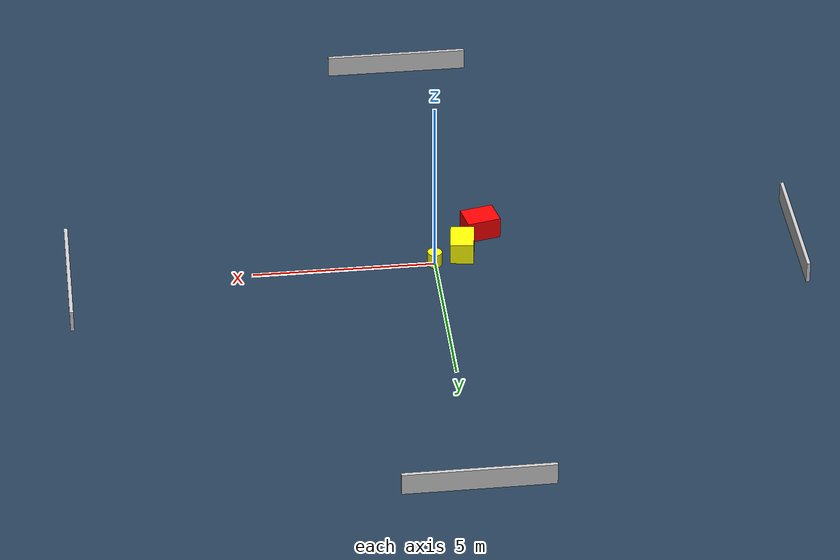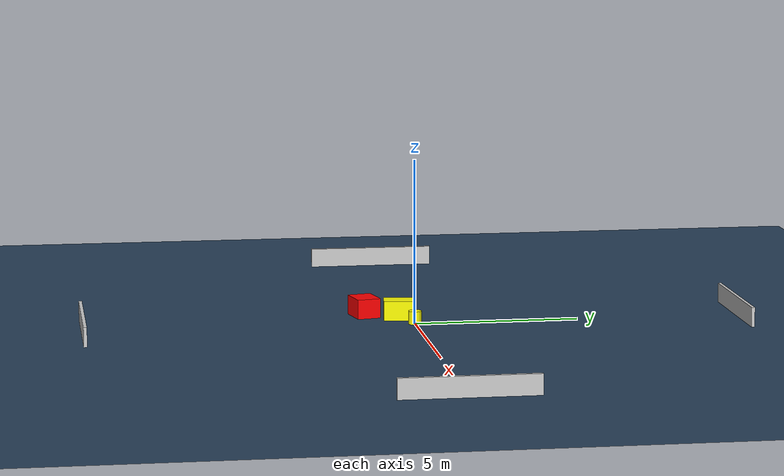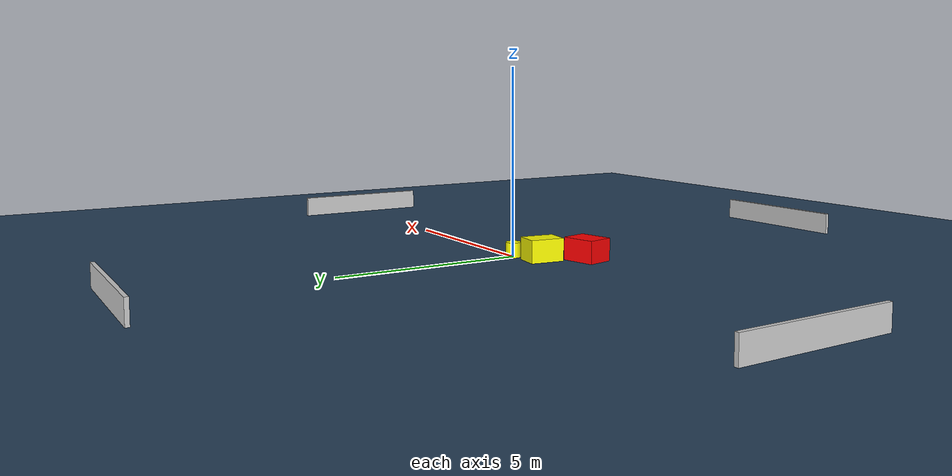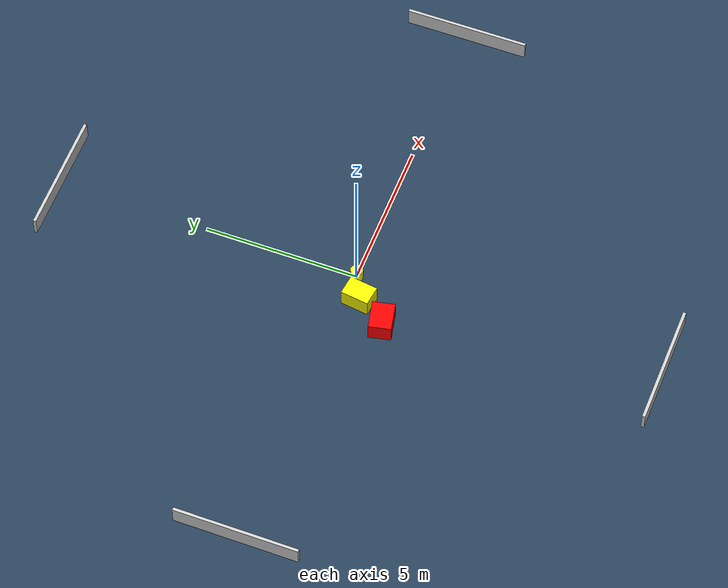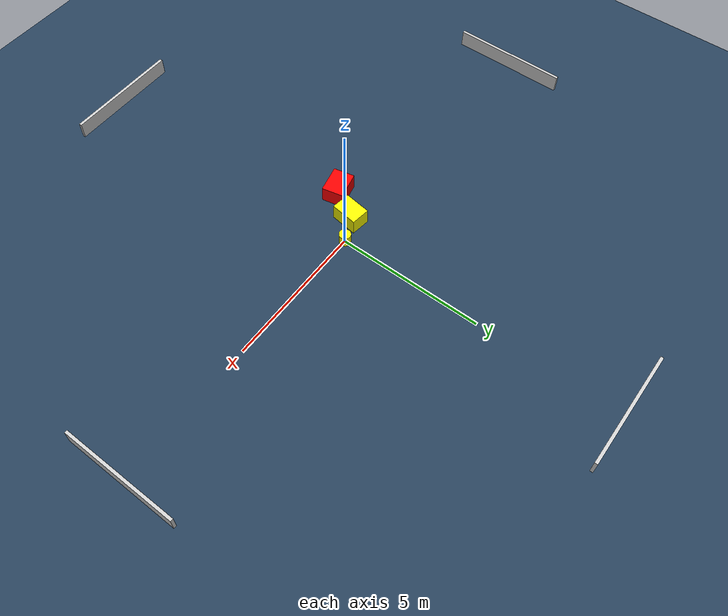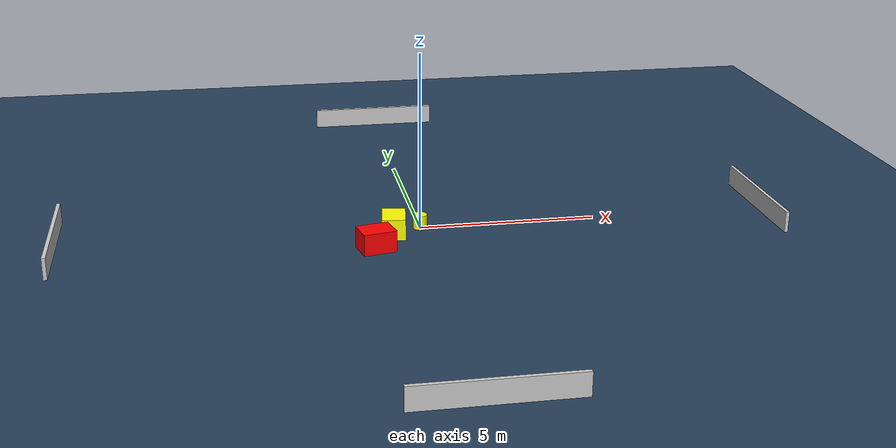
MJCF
<?xml version="1.0" ?>
<mujoco model="generated_environment">
  <option timestep="0.01" integrator="RK4" cone="elliptic"/>
  <default>
    <geom density="1"/>
  </default>
  <asset>
    <texture builtin="gradient" height="3072" name="skybox" rgb1="0.3 0.5 0.7" rgb2="0 0 0" type="skybox" width="512"/>
    <texture builtin="checker" height="300" name="groundplane" rgb1="0.2 0.3 0.4" rgb2="0.1 0.2 0.3" type="2d" width="300"/>
    <material name="groundplane" reflectance="0.2" texrepeat="5 5" texture="groundplane"/>
  </asset>
  <worldbody>
    <light dir="0 0 -1" directional="true" pos="0 0 1.5"/>
    <geom condim="3" friction="0.5 0.005 0.001" material="groundplane" name="floor" pos="0 0 0" size="0 0 0.05" type="plane"/>
    <body name="walls">
      <geom name="wall_1" condim="4" pos="-10.0 0.0 0.3" rgba="0.800000011920929 0.800000011920929 0.800000011920929 1.0" size="0.05 2.0 0.3" type="box"/>
      <geom name="wall_2" condim="4" pos="10.0 0.0 0.3" rgba="0.800000011920929 0.800000011920929 0.800000011920929 1.0" size="0.05 2.0 0.3" type="box"/>
      <geom name="wall_3" condim="4" pos="0.0 -10.0 0.3" rgba="0.800000011920929 0.800000011920929 0.800000011920929 1.0" size="2.0 0.05 0.3" type="box"/>
      <geom name="wall_4" condim="4" pos="0.0 10.0 0.3" rgba="0.800000011920929 0.800000011920929 0.800000011920929 1.0" size="2.0 0.05 0.3" type="box"/>
    </body>
    <body name="robot">
      <joint name="joint_x" type="slide" pos="0 0 0" axis="1 0 0"/>
      <joint name="joint_y" type="slide" pos="0 0 0" axis="0 1 0"/>
      <geom name="robot" type="cylinder" pos="0.0 0.0 0.2" size="0.2 0.2 0.0" mass="5.0" friction="1.0 0.005 0.0001" condim="4" rgba="1.0 1.0 0.0 1.0"/>
    </body>
    <body name="obstacle_1_movable">
      <geom name="obstacle_1_movable" condim="4" pos="-0.7979765893767773 -0.38122277743216576 0.3" euler="0 0 82.39290120609043" friction="0.0 0.005 0.001" rgba="1.0 1.0 0.0 1.0" size="0.4566628993462306 0.32536522561591497 0.3" type="box" mass="0.1"/>
      <joint type="free"/>
    </body>
    <body name="obstacle_2_static">
      <geom name="obstacle_2_static" condim="4" pos="-1.4173139965303843 -1.3612895788563621 0.3" euler="0 0 192.23664023371907" friction="0.0 0.005 0.001" rgba="1.0 0.0 0.0 1.0" size="0.46546599578042597 0.36275948177175577 0.3" type="box"/>
    </body>
  </worldbody>
  <actuator>
    <motor name="actuator_x" joint="joint_x" gear="1" ctrlrange="-1 1"/>
    <motor name="actuator_y" joint="joint_y" gear="1" ctrlrange="-1 1"/>
  </actuator>
</mujoco>
